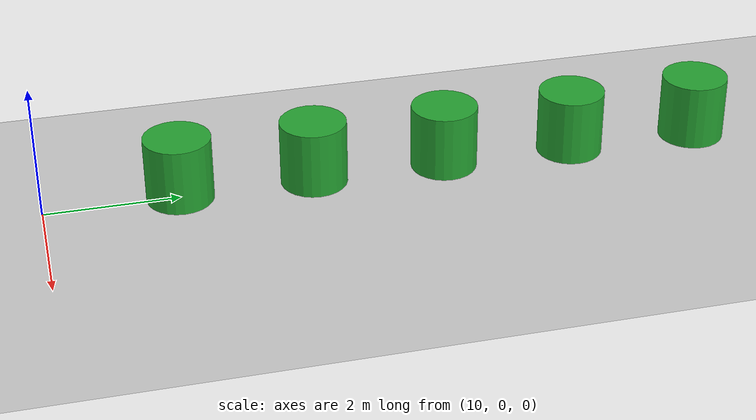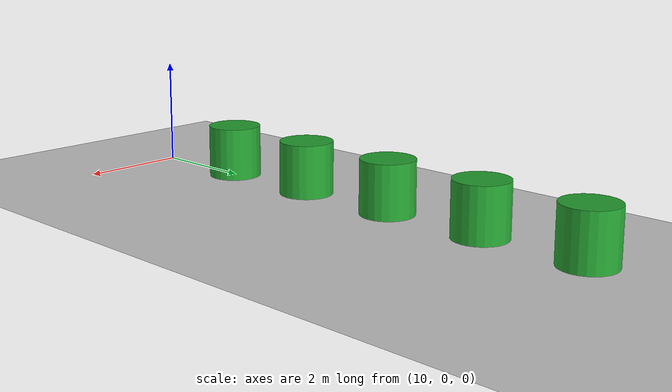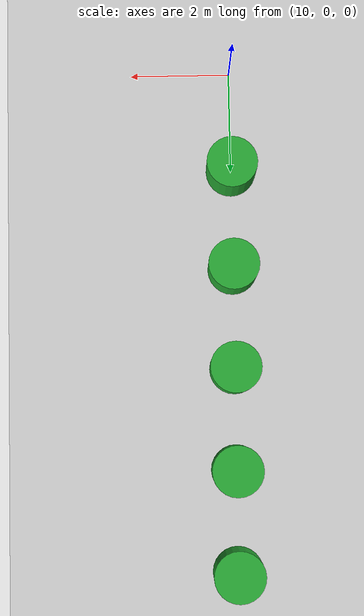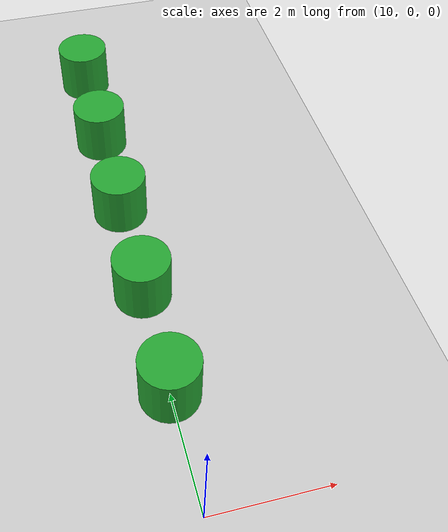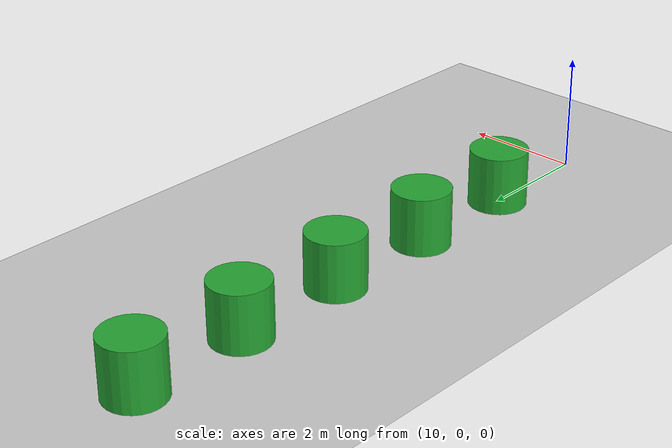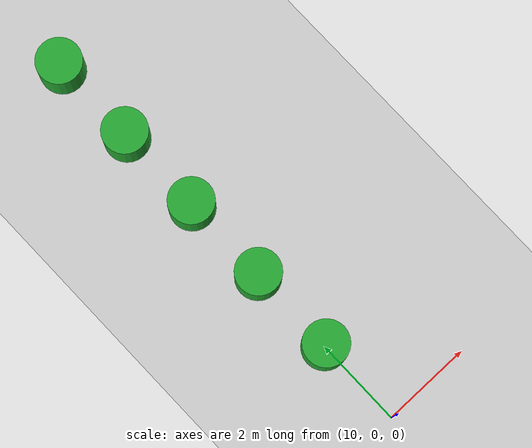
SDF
<?xml version="1.0" ?>
<sdf version="1.4">
  <world name="default">
    <!-- A global light source -->
    <include>
      <uri>model://sun</uri>
    </include>
    <!-- A ground plane -->
    <include>
      <uri>model://ground_plane</uri>
    </include>
    <!-- Own physics settings to speed up simulation -->
    <physics type='ode'>
      <max_step_size>0.01</max_step_size>
      <gravity>0 0 -9.8</gravity>
    </physics>

		<model name='point_goal0'>
			<pose>10 10 0.5 0 0 0</pose>
			<link name='link'>
				<inertial>
					<mass>1</mass>
				</inertial>
				<visual name='visual'>
					<geometry>
						<cylinder>
								<radius>0.5</radius>
								<length>1.0</length>
						</cylinder>
					</geometry>
					<material>
						<script>
							<uri>file://media/materials/scripts/gazebo.material</uri>
							<name>Gazebo/Green</name>
						</script>
					</material>
				</visual>
				<velocity_decay>
					<linear>0</linear>
					<angular>0</angular>
				</velocity_decay>
				<self_collide>0</self_collide>
				<kinematic>0</kinematic>
				<gravity>0</gravity>
			</link>
		</model>
		<model name='point_goal1'>
			<pose>10 8 0.5 0 0 0</pose>
			<link name='link'>
				<inertial>
					<mass>1</mass>
				</inertial>
				<visual name='visual'>
					<geometry>
						<cylinder>
								<radius>0.5</radius>
								<length>1.0</length>
						</cylinder>
					</geometry>
					<material>
						<script>
							<uri>file://media/materials/scripts/gazebo.material</uri>
							<name>Gazebo/Green</name>
						</script>
					</material>
				</visual>
				<velocity_decay>
					<linear>0</linear>
					<angular>0</angular>
				</velocity_decay>
				<self_collide>0</self_collide>
				<kinematic>0</kinematic>
				<gravity>0</gravity>
			</link>
		</model>
		<model name='point_goal2'>
			<pose>10 6 0.5 0 0 0</pose>
			<link name='link'>
				<inertial>
					<mass>1</mass>
				</inertial>
				<visual name='visual'>
					<geometry>
						<cylinder>
								<radius>0.5</radius>
								<length>1.0</length>
						</cylinder>
					</geometry>
					<material>
						<script>
							<uri>file://media/materials/scripts/gazebo.material</uri>
							<name>Gazebo/Green</name>
						</script>
					</material>
				</visual>
				<velocity_decay>
					<linear>0</linear>
					<angular>0</angular>
				</velocity_decay>
				<self_collide>0</self_collide>
				<kinematic>0</kinematic>
				<gravity>0</gravity>
			</link>
		</model>
		<model name='point_goal3'>
			<pose>10 4 0.5 0 0 0</pose>
			<link name='link'>
				<inertial>
					<mass>1</mass>
				</inertial>
				<visual name='visual'>
					<geometry>
						<cylinder>
								<radius>0.5</radius>
								<length>1.0</length>
						</cylinder>
					</geometry>
					<material>
						<script>
							<uri>file://media/materials/scripts/gazebo.material</uri>
							<name>Gazebo/Green</name>
						</script>
					</material>
				</visual>
				<velocity_decay>
					<linear>0</linear>
					<angular>0</angular>
				</velocity_decay>
				<self_collide>0</self_collide>
				<kinematic>0</kinematic>
				<gravity>0</gravity>
			</link>
		</model>
		<model name='point_goal4'>
			<pose>10 2 0.5 0 0 0</pose>
			<link name='link'>
				<inertial>
					<mass>1</mass>
				</inertial>
				<visual name='visual'>
					<geometry>
						<cylinder>
								<radius>0.5</radius>
								<length>1.0</length>
						</cylinder>
					</geometry>
					<material>
						<script>
							<uri>file://media/materials/scripts/gazebo.material</uri>
							<name>Gazebo/Green</name>
						</script>
					</material>
				</visual>
				<velocity_decay>
					<linear>0</linear>
					<angular>0</angular>
				</velocity_decay>
				<self_collide>0</self_collide>
				<kinematic>0</kinematic>
				<gravity>0</gravity>
			</link>
		</model>
  </world>
</sdf>
